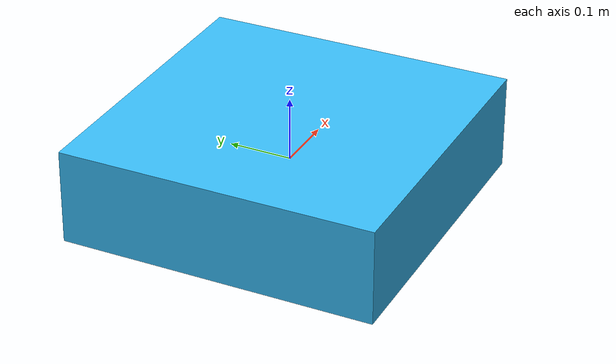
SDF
<?xml version="1.0" ?>
<sdf version="1.6">
  <model name="frugalnav_drone">
    <link name="base_link">
      <gravity>0</gravity>
      <inertial><mass>1.0</mass>
        <inertia><ixx>0.02</ixx><iyy>0.02</iyy><izz>0.03</izz><ixy>0</ixy><ixz>0</ixz><iyz>0</iyz></inertia></inertial>
      <collision name="c"><geometry><box><size>0.5 0.5 0.15</size></box></geometry></collision>
      <visual name="body"><geometry><box><size>0.5 0.5 0.15</size></box></geometry>
        <material><ambient>0.22 0.74 0.97 1</ambient><diffuse>0.22 0.74 0.97 1</diffuse><emissive>0.05 0.2 0.3 1</emissive></material></visual>

      <!-- downward camera: optical +X points straight down (pitch +90 deg) -->
      <sensor name="down_cam" type="camera">
        <pose>0 0 -0.12 0 1.5708 0</pose>
        <always_on>1</always_on>
        <update_rate>15</update_rate>
        <visualize>false</visualize>
        <camera>
          <horizontal_fov>1.5</horizontal_fov>
          <image><width>640</width><height>480</height><format>R8G8B8</format></image>
          <clip><near>0.1</near><far>80</far></clip>
          <distortion><k1>-0.08</k1><k2>0.02</k2><k3>0.0</k3><p1>0.0</p1><p2>0.0</p2><center>0.5 0.5</center></distortion>
          <noise><type>gaussian</type><mean>0.0</mean><stddev>0.005</stddev></noise>
        </camera>
        <plugin name="down_cam_plugin" filename="libgazebo_ros_camera.so">
          <ros><namespace>/frugalnav</namespace></ros>
          <camera_name>down_cam</camera_name>
          <frame_name>down_cam_link</frame_name>
        </plugin>
      </sensor>

      <!-- forward/approach camera: faces -X (the direction of travel toward the target) -->
      <sensor name="front_cam" type="camera">
        <pose>0.15 0 0 0 0 3.14159</pose>
        <always_on>1</always_on>
        <update_rate>15</update_rate>
        <visualize>false</visualize>
        <camera>
          <horizontal_fov>1.4</horizontal_fov>
          <image><width>640</width><height>480</height><format>R8G8B8</format></image>
          <clip><near>0.1</near><far>90</far></clip>
        </camera>
        <plugin name="front_cam_plugin" filename="libgazebo_ros_camera.so">
          <ros><namespace>/frugalnav</namespace></ros>
          <camera_name>front_cam</camera_name>
          <frame_name>front_cam_link</frame_name>
        </plugin>
      </sensor>

      <sensor name="scanner" type="ray">
        <pose>0 0 0.2 0 0 0</pose>
        <always_on>1</always_on>
        <update_rate>20</update_rate>
        <visualize>false</visualize>
        <ray>
          <scan><horizontal>
            <samples>180</samples><resolution>1</resolution>
            <min_angle>-3.14159</min_angle><max_angle>3.14159</max_angle>
          </horizontal></scan>
          <range><min>0.3</min><max>8.0</max><resolution>0.02</resolution></range>
          <noise><type>gaussian</type><mean>0.0</mean><stddev>0.02</stddev></noise>
        </ray>
        <plugin name="scan_plugin" filename="libgazebo_ros_ray_sensor.so">
          <ros><namespace>/frugalnav</namespace><remapping>~/out:=scan</remapping></ros>
          <output_type>sensor_msgs/LaserScan</output_type>
          <frame_name>base_link</frame_name>
        </plugin>
      </sensor>

      <sensor name="imu" type="imu">
        <always_on>1</always_on>
        <update_rate>200</update_rate>
        <imu>
          <angular_velocity><x><noise type="gaussian"><stddev>0.003</stddev></noise></x>
            <y><noise type="gaussian"><stddev>0.003</stddev></noise></y>
            <z><noise type="gaussian"><stddev>0.003</stddev></noise></z></angular_velocity>
        </imu>
        <plugin name="imu_plugin" filename="libgazebo_ros_imu_sensor.so">
          <ros><namespace>/frugalnav</namespace><remapping>~/out:=imu</remapping></ros>
          <frame_name>base_link</frame_name>
        </plugin>
      </sensor>

      <!-- downward single-beam rangefinder = the altimeter. Optical flow needs a metric
           scale (v = flow * altitude / focal); this supplies the altitude for real. -->
      <sensor name="altimeter" type="ray">
        <pose>0 0 -0.12 0 1.5708 0</pose>
        <always_on>1</always_on>
        <update_rate>30</update_rate>
        <ray>
          <scan><horizontal><samples>1</samples><resolution>1</resolution>
            <min_angle>0</min_angle><max_angle>0</max_angle></horizontal></scan>
          <range><min>0.1</min><max>40.0</max><resolution>0.01</resolution></range>
          <noise><type>gaussian</type><mean>0.0</mean><stddev>0.01</stddev></noise>
        </ray>
        <plugin name="alt_plugin" filename="libgazebo_ros_ray_sensor.so">
          <ros><namespace>/frugalnav</namespace><remapping>~/out:=height</remapping></ros>
          <output_type>sensor_msgs/Range</output_type>
          <frame_name>base_link</frame_name>
        </plugin>
      </sensor>
    </link>

    <plugin name="planar_move" filename="libgazebo_ros_planar_move.so">
      <ros><namespace>/frugalnav</namespace>
        <remapping>cmd_vel:=cmd_vel</remapping><remapping>odom:=odom_planar</remapping></ros>
      <update_rate>50</update_rate><publish_rate>50</publish_rate>
      <publish_odom>true</publish_odom><publish_odom_tf>false</publish_odom_tf>
      <odometry_frame>world</odometry_frame><robot_base_frame>base_link</robot_base_frame>
      <covariance_x>0.0</covariance_x><covariance_y>0.0</covariance_y><covariance_yaw>0.0</covariance_yaw>
    </plugin>
    <plugin name="p3d" filename="libgazebo_ros_p3d.so">
      <ros><namespace>/frugalnav</namespace><remapping>odom:=truth</remapping></ros>
      <body_name>base_link</body_name><frame_name>world</frame_name>
      <update_rate>50</update_rate><gaussian_noise>0.0</gaussian_noise>
    </plugin>
  </model>
</sdf>
